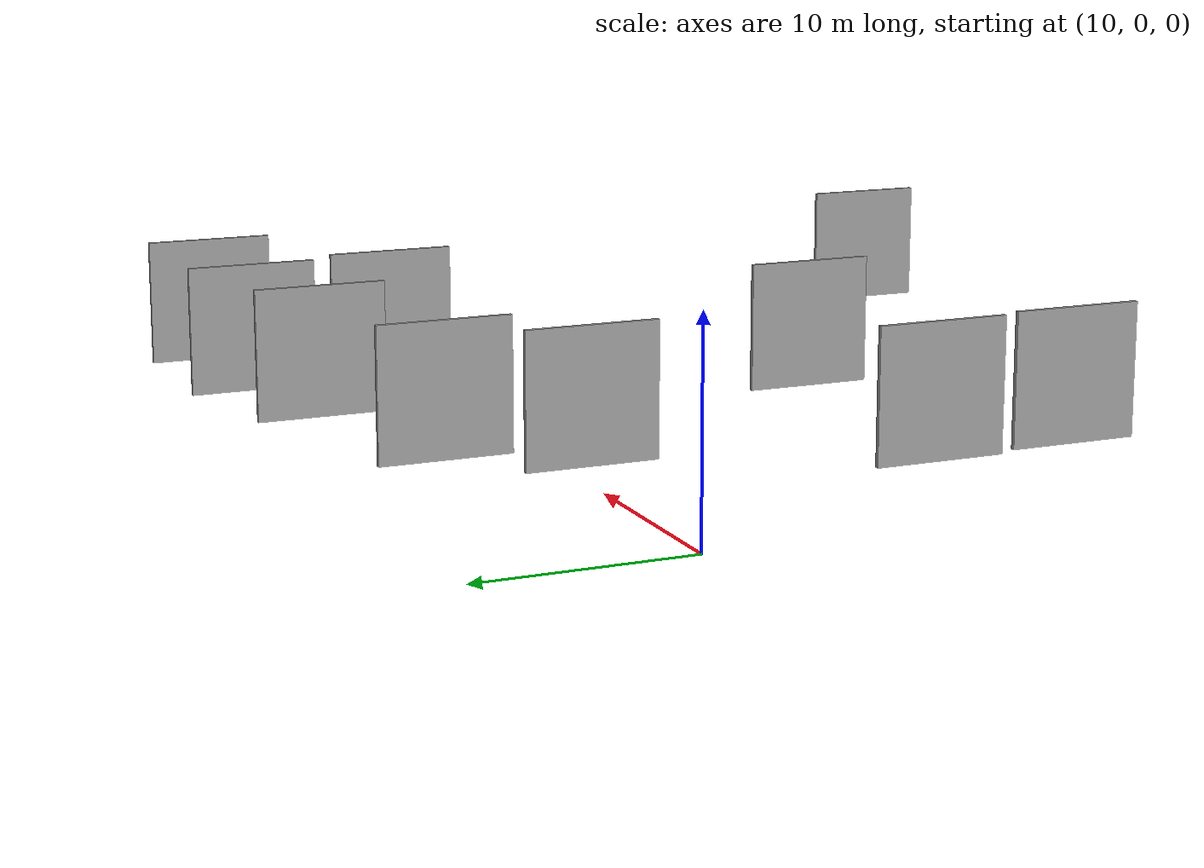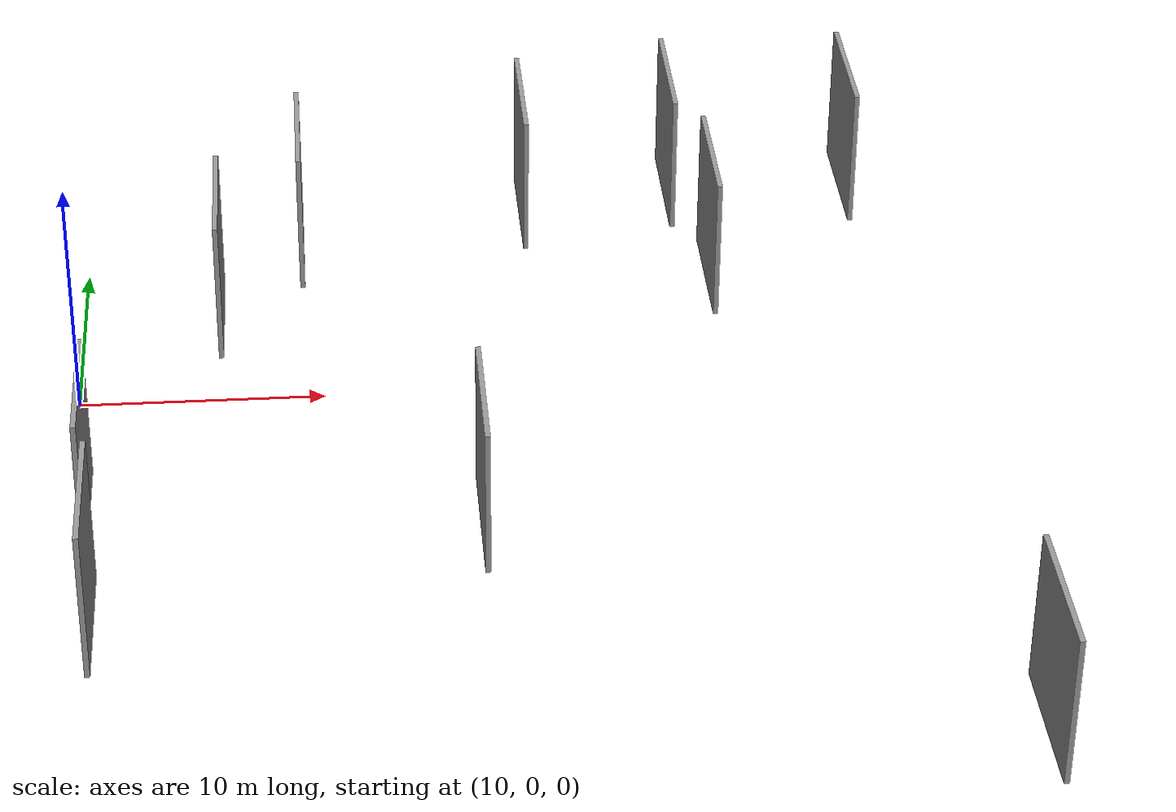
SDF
<sdf version="1.6">
 <world name="default">
  <scene>
   <sky><clouds><speed>12</speed></clouds></sky>
   <ambient>0.4 0.4 0.4 1</ambient>
   <background>0.7 0.7 0.7 1</background>
   <shadows>1</shadows>
  </scene>
  <gravity>0 0 -9.8066</gravity>
  <magnetic_field>6e-06 2.3e-05 -4.2e-05</magnetic_field>
  <physics default="0" name="default_physics" type="ode">
   <ode>
    <solver>
     <type>quick</type>
     <iters>10</iters>
     <sor>1.0</sor>
     <use_dynamic_moi_rescaling>0</use_dynamic_moi_rescaling>
    </solver>
    <constraints>
     <cfm>0</cfm>
     <erp>0.2</erp>
     <contact_max_correcting_vel>100</contact_max_correcting_vel>
     <contact_surface_layer>0.001</contact_surface_layer>
    </constraints>
   </ode>
   <max_step_size>0.004</max_step_size>
   <real_time_factor>1</real_time_factor>
   <real_time_update_rate>250</real_time_update_rate>
  </physics>
  <light name="sun" type="directional">
   <pose>0 0 10 0 0 0</pose>
   <diffuse>0.8 0.8 0.8 1</diffuse>
   <specular>0.2 0.2 0.2 1</specular>
   <attenuation>
    <range>1000</range>
    <constant>0.9</constant>
    <linear>0.01</linear>
    <quadratic>0.001</quadratic>
   </attenuation>
   <direction>-0.5 0.1 -0.9</direction>
  </light>
  <model name="grey_wall_1">
   <static>1</static>
   <pose>35.1331 11.4348 2.5 0.000000 0.000000 1.570796</pose>
   <link name="link">
    <pose>0 0 3.00 0 0 0</pose>
    <collision name="collision"><geometry><box><size>6.00 0.2 6.00</size></box></geometry></collision>
    <visual name="visual">
     <cast_shadows>0</cast_shadows>
     <geometry><box><size>6.00 0.2 6.00</size></box></geometry>
     <material>
      <script>
       <uri>model://grey_wall/materials/scripts</uri>
       <uri>model://grey_wall/materials/textures</uri>
       <name>vrc/grey_wall</name>
      </script>
     </material>
    </visual>
   </link>
  </model>
  <model name="grey_wall_2">
   <static>1</static>
   <pose>28.7384 10.0372 2.5 0.000000 0.000000 1.570796</pose>
   <link name="link">
    <pose>0 0 3.00 0 0 0</pose>
    <collision name="collision"><geometry><box><size>6.00 0.2 6.00</size></box></geometry></collision>
    <visual name="visual">
     <cast_shadows>0</cast_shadows>
     <geometry><box><size>6.00 0.2 6.00</size></box></geometry>
     <material>
      <script>
       <uri>model://grey_wall/materials/scripts</uri>
       <uri>model://grey_wall/materials/textures</uri>
       <name>vrc/grey_wall</name>
      </script>
     </material>
    </visual>
   </link>
  </model>
  <model name="grey_wall_3">
   <static>1</static>
   <pose>15.8869 2.2647 2.5 0.000000 0.000000 1.570796</pose>
   <link name="link">
    <pose>0 0 3.00 0 0 0</pose>
    <collision name="collision"><geometry><box><size>6.00 0.2 6.00</size></box></geometry></collision>
    <visual name="visual">
     <cast_shadows>0</cast_shadows>
     <geometry><box><size>6.00 0.2 6.00</size></box></geometry>
     <material>
      <script>
       <uri>model://grey_wall/materials/scripts</uri>
       <uri>model://grey_wall/materials/textures</uri>
       <name>vrc/grey_wall</name>
      </script>
     </material>
    </visual>
   </link>
  </model>
  <model name="grey_wall_4">
   <static>1</static>
   <pose>42.8436 11.5053 2.5 0.000000 0.000000 1.570796</pose>
   <link name="link">
    <pose>0 0 3.00 0 0 0</pose>
    <collision name="collision"><geometry><box><size>6.00 0.2 6.00</size></box></geometry></collision>
    <visual name="visual">
     <cast_shadows>0</cast_shadows>
     <geometry><box><size>6.00 0.2 6.00</size></box></geometry>
     <material>
      <script>
       <uri>model://grey_wall/materials/scripts</uri>
       <uri>model://grey_wall/materials/textures</uri>
       <name>vrc/grey_wall</name>
      </script>
     </material>
    </visual>
   </link>
  </model>
  <model name="grey_wall_5">
   <static>1</static>
   <pose>36.1639 4.2890 2.5 0.000000 0.000000 1.570796</pose>
   <link name="link">
    <pose>0 0 3.00 0 0 0</pose>
    <collision name="collision"><geometry><box><size>6.00 0.2 6.00</size></box></geometry></collision>
    <visual name="visual">
     <cast_shadows>0</cast_shadows>
     <geometry><box><size>6.00 0.2 6.00</size></box></geometry>
     <material>
      <script>
       <uri>model://grey_wall/materials/scripts</uri>
       <uri>model://grey_wall/materials/textures</uri>
       <name>vrc/grey_wall</name>
      </script>
     </material>
    </visual>
   </link>
  </model>
  <model name="grey_wall_6">
   <static>1</static>
   <pose>44.4037 -26.2805 2.5 0.000000 0.000000 1.570796</pose>
   <link name="link">
    <pose>0 0 3.00 0 0 0</pose>
    <collision name="collision"><geometry><box><size>6.00 0.2 6.00</size></box></geometry></collision>
    <visual name="visual">
     <cast_shadows>0</cast_shadows>
     <geometry><box><size>6.00 0.2 6.00</size></box></geometry>
     <material>
      <script>
       <uri>model://grey_wall/materials/scripts</uri>
       <uri>model://grey_wall/materials/textures</uri>
       <name>vrc/grey_wall</name>
      </script>
     </material>
    </visual>
   </link>
  </model>
  <model name="grey_wall_7">
   <static>1</static>
   <pose>25.7268 -13.0042 2.5 0.000000 0.000000 1.570796</pose>
   <link name="link">
    <pose>0 0 3.00 0 0 0</pose>
    <collision name="collision"><geometry><box><size>6.00 0.2 6.00</size></box></geometry></collision>
    <visual name="visual">
     <cast_shadows>0</cast_shadows>
     <geometry><box><size>6.00 0.2 6.00</size></box></geometry>
     <material>
      <script>
       <uri>model://grey_wall/materials/scripts</uri>
       <uri>model://grey_wall/materials/textures</uri>
       <name>vrc/grey_wall</name>
      </script>
     </material>
    </visual>
   </link>
  </model>
  <model name="grey_wall_8">
   <static>1</static>
   <pose>11.2981 -18.2632 2.5 0.000000 0.000000 1.570796</pose>
   <link name="link">
    <pose>0 0 3.00 0 0 0</pose>
    <collision name="collision"><geometry><box><size>6.00 0.2 6.00</size></box></geometry></collision>
    <visual name="visual">
     <cast_shadows>0</cast_shadows>
     <geometry><box><size>6.00 0.2 6.00</size></box></geometry>
     <material>
      <script>
       <uri>model://grey_wall/materials/scripts</uri>
       <uri>model://grey_wall/materials/textures</uri>
       <name>vrc/grey_wall</name>
      </script>
     </material>
    </visual>
   </link>
  </model>
  <model name="grey_wall_9">
   <static>1</static>
   <pose>10.9092 -11.4321 2.5 0.000000 0.000000 1.570796</pose>
   <link name="link">
    <pose>0 0 3.00 0 0 0</pose>
    <collision name="collision"><geometry><box><size>6.00 0.2 6.00</size></box></geometry></collision>
    <visual name="visual">
     <cast_shadows>0</cast_shadows>
     <geometry><box><size>6.00 0.2 6.00</size></box></geometry>
     <material>
      <script>
       <uri>model://grey_wall/materials/scripts</uri>
       <uri>model://grey_wall/materials/textures</uri>
       <name>vrc/grey_wall</name>
      </script>
     </material>
    </visual>
   </link>
  </model>
  <model name="grey_wall_10">
   <static>1</static>
   <pose>19.2351 7.5190 2.5 0.000000 0.000000 1.570796</pose>
   <link name="link">
    <pose>0 0 3.00 0 0 0</pose>
    <collision name="collision"><geometry><box><size>6.00 0.2 6.00</size></box></geometry></collision>
    <visual name="visual">
     <cast_shadows>0</cast_shadows>
     <geometry><box><size>6.00 0.2 6.00</size></box></geometry>
     <material>
      <script>
       <uri>model://grey_wall/materials/scripts</uri>
       <uri>model://grey_wall/materials/textures</uri>
       <name>vrc/grey_wall</name>
      </script>
     </material>
    </visual>
   </link>
  </model>
 </world>
</sdf>
